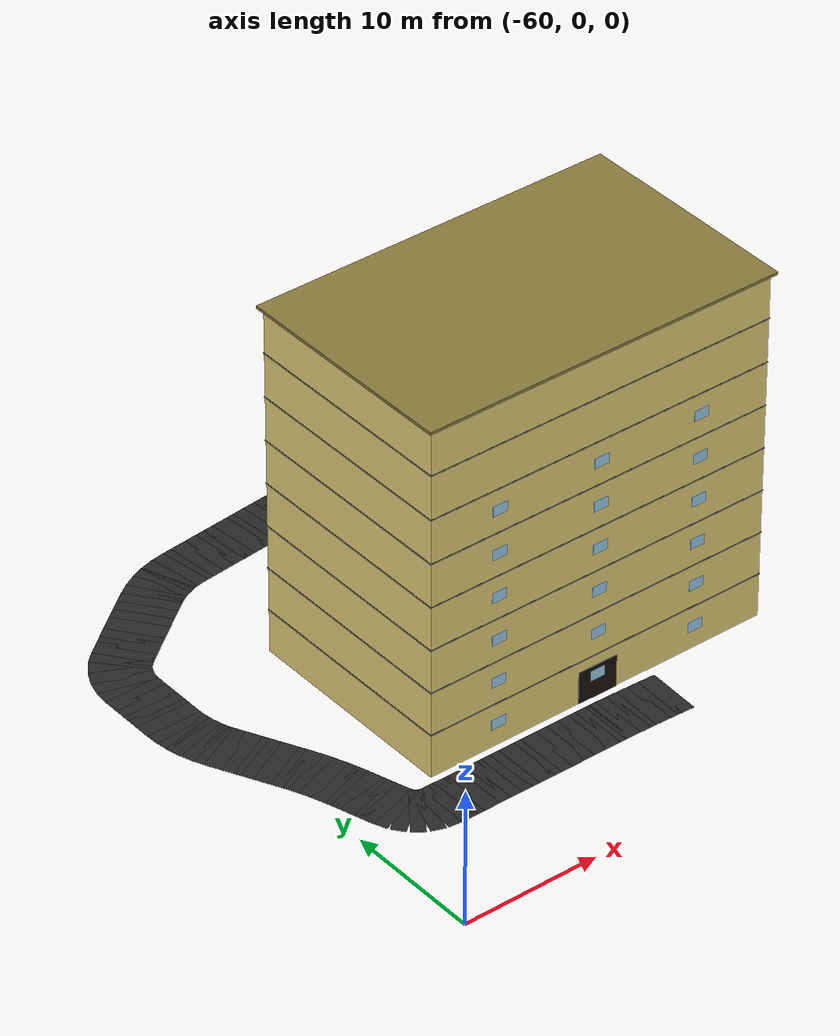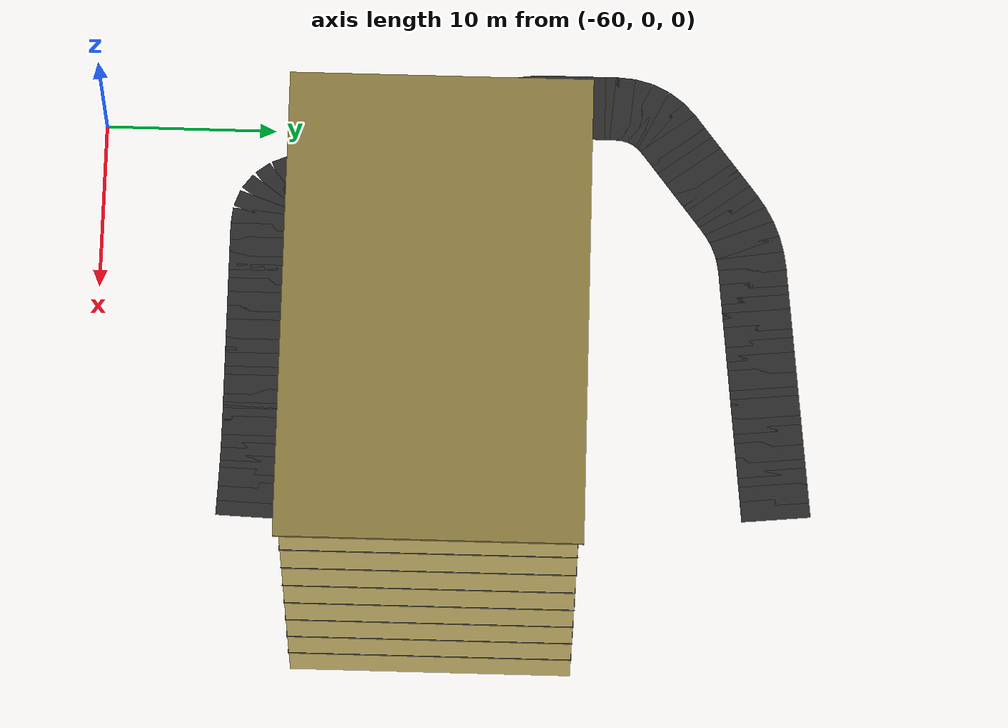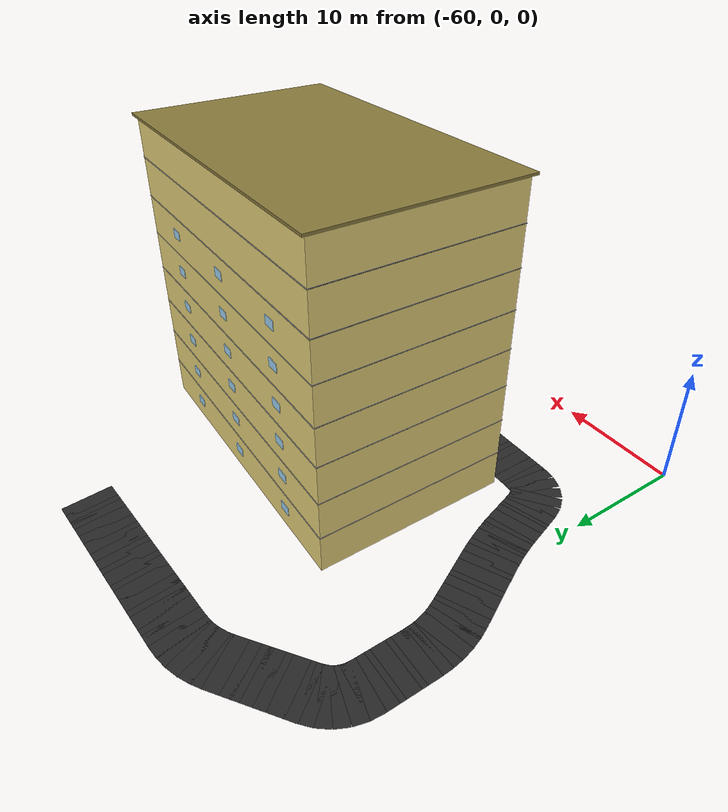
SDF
<sdf version="1.7">
 <world name="campus_delivery">
  <model name="campus_roads">
   <static>true</static>
   <link name="north_campus_loop_0223">
    <pose>-37.325 39.667 0.002 0 0 -3.041924</pose>
    <visual name="visual">
     <geometry><box><size>1.244 4.000 0.004</size></box></geometry>
     <material><ambient>0.160 0.160 0.160 1.000</ambient><diffuse>0.160 0.160 0.160 1.000</diffuse></material>
    </visual>
   </link>
   <link name="north_campus_loop_0224">
    <pose>-38.215 39.578 0.002 0 0 -3.041924</pose>
    <visual name="visual">
     <geometry><box><size>1.244 4.000 0.004</size></box></geometry>
     <material><ambient>0.160 0.160 0.160 1.000</ambient><diffuse>0.160 0.160 0.160 1.000</diffuse></material>
    </visual>
   </link>
   <link name="north_campus_loop_0225">
    <pose>-39.105 39.489 0.002 0 0 -3.041924</pose>
    <visual name="visual">
     <geometry><box><size>1.244 4.000 0.004</size></box></geometry>
     <material><ambient>0.160 0.160 0.160 1.000</ambient><diffuse>0.160 0.160 0.160 1.000</diffuse></material>
    </visual>
   </link>
   <link name="north_campus_loop_0226">
    <pose>-39.995 39.400 0.002 0 0 -3.041924</pose>
    <visual name="visual">
     <geometry><box><size>1.244 4.000 0.004</size></box></geometry>
     <material><ambient>0.160 0.160 0.160 1.000</ambient><diffuse>0.160 0.160 0.160 1.000</diffuse></material>
    </visual>
   </link>
   <link name="north_campus_loop_0227">
    <pose>-40.885 39.311 0.002 0 0 -3.041924</pose>
    <visual name="visual">
     <geometry><box><size>1.244 4.000 0.004</size></box></geometry>
     <material><ambient>0.160 0.160 0.160 1.000</ambient><diffuse>0.160 0.160 0.160 1.000</diffuse></material>
    </visual>
   </link>
   <link name="north_campus_loop_0228">
    <pose>-41.775 39.222 0.002 0 0 -3.041924</pose>
    <visual name="visual">
     <geometry><box><size>1.244 4.000 0.004</size></box></geometry>
     <material><ambient>0.160 0.160 0.160 1.000</ambient><diffuse>0.160 0.160 0.160 1.000</diffuse></material>
    </visual>
   </link>
   <link name="north_campus_loop_0229">
    <pose>-42.665 39.133 0.002 0 0 -3.041924</pose>
    <visual name="visual">
     <geometry><box><size>1.244 4.000 0.004</size></box></geometry>
     <material><ambient>0.160 0.160 0.160 1.000</ambient><diffuse>0.160 0.160 0.160 1.000</diffuse></material>
    </visual>
   </link>
   <link name="north_campus_loop_0230">
    <pose>-43.555 39.044 0.002 0 0 -3.041924</pose>
    <visual name="visual">
     <geometry><box><size>1.244 4.000 0.004</size></box></geometry>
     <material><ambient>0.160 0.160 0.160 1.000</ambient><diffuse>0.160 0.160 0.160 1.000</diffuse></material>
    </visual>
   </link>
   <link name="north_campus_loop_0231">
    <pose>-44.445 38.956 0.002 0 0 -3.041924</pose>
    <visual name="visual">
     <geometry><box><size>1.244 4.000 0.004</size></box></geometry>
     <material><ambient>0.160 0.160 0.160 1.000</ambient><diffuse>0.160 0.160 0.160 1.000</diffuse></material>
    </visual>
   </link>
   <link name="north_campus_loop_0232">
    <pose>-45.335 38.867 0.002 0 0 -3.041924</pose>
    <visual name="visual">
     <geometry><box><size>1.244 4.000 0.004</size></box></geometry>
     <material><ambient>0.160 0.160 0.160 1.000</ambient><diffuse>0.160 0.160 0.160 1.000</diffuse></material>
    </visual>
   </link>
   <link name="north_campus_loop_0233">
    <pose>-46.225 38.778 0.002 0 0 -3.041924</pose>
    <visual name="visual">
     <geometry><box><size>1.244 4.000 0.004</size></box></geometry>
     <material><ambient>0.160 0.160 0.160 1.000</ambient><diffuse>0.160 0.160 0.160 1.000</diffuse></material>
    </visual>
   </link>
   <link name="north_campus_loop_0234">
    <pose>-47.115 38.689 0.002 0 0 -3.041924</pose>
    <visual name="visual">
     <geometry><box><size>1.244 4.000 0.004</size></box></geometry>
     <material><ambient>0.160 0.160 0.160 1.000</ambient><diffuse>0.160 0.160 0.160 1.000</diffuse></material>
    </visual>
   </link>
   <link name="north_campus_loop_0235">
    <pose>-48.005 38.600 0.002 0 0 -3.041924</pose>
    <visual name="visual">
     <geometry><box><size>1.244 4.000 0.004</size></box></geometry>
     <material><ambient>0.160 0.160 0.160 1.000</ambient><diffuse>0.160 0.160 0.160 1.000</diffuse></material>
    </visual>
   </link>
   <link name="north_campus_loop_0236">
    <pose>-48.895 38.511 0.002 0 0 -3.041924</pose>
    <visual name="visual">
     <geometry><box><size>1.244 4.000 0.004</size></box></geometry>
     <material><ambient>0.160 0.160 0.160 1.000</ambient><diffuse>0.160 0.160 0.160 1.000</diffuse></material>
    </visual>
   </link>
   <link name="north_campus_loop_0237">
    <pose>-49.785 38.422 0.002 0 0 -3.041924</pose>
    <visual name="visual">
     <geometry><box><size>1.244 4.000 0.004</size></box></geometry>
     <material><ambient>0.160 0.160 0.160 1.000</ambient><diffuse>0.160 0.160 0.160 1.000</diffuse></material>
    </visual>
   </link>
   <link name="north_campus_loop_0238">
    <pose>-50.675 38.333 0.002 0 0 -3.041924</pose>
    <visual name="visual">
     <geometry><box><size>1.244 4.000 0.004</size></box></geometry>
     <material><ambient>0.160 0.160 0.160 1.000</ambient><diffuse>0.160 0.160 0.160 1.000</diffuse></material>
    </visual>
   </link>
   <link name="north_campus_loop_0239">
    <pose>-51.565 38.244 0.002 0 0 -3.041924</pose>
    <visual name="visual">
     <geometry><box><size>1.244 4.000 0.004</size></box></geometry>
     <material><ambient>0.160 0.160 0.160 1.000</ambient><diffuse>0.160 0.160 0.160 1.000</diffuse></material>
    </visual>
   </link>
   <link name="north_campus_loop_0240">
    <pose>-52.400 38.139 0.002 0 0 -2.989473</pose>
    <visual name="visual">
     <geometry><box><size>1.140 4.000 0.004</size></box></geometry>
     <material><ambient>0.160 0.160 0.160 1.000</ambient><diffuse>0.160 0.160 0.160 1.000</diffuse></material>
    </visual>
   </link>
   <link name="north_campus_loop_0241">
    <pose>-53.165 37.980 0.002 0 0 -2.881078</pose>
    <visual name="visual">
     <geometry><box><size>1.125 4.000 0.004</size></box></geometry>
     <material><ambient>0.160 0.160 0.160 1.000</ambient><diffuse>0.160 0.160 0.160 1.000</diffuse></material>
    </visual>
   </link>
   <link name="north_campus_loop_0242">
    <pose>-53.899 37.740 0.002 0 0 -2.770008</pose>
    <visual name="visual">
     <geometry><box><size>1.121 4.000 0.004</size></box></geometry>
     <material><ambient>0.160 0.160 0.160 1.000</ambient><diffuse>0.160 0.160 0.160 1.000</diffuse></material>
    </visual>
   </link>
   <link name="north_campus_loop_0243">
    <pose>-54.601 37.420 0.002 0 0 -2.658938</pose>
    <visual name="visual">
     <geometry><box><size>1.125 4.000 0.004</size></box></geometry>
     <material><ambient>0.160 0.160 0.160 1.000</ambient><diffuse>0.160 0.160 0.160 1.000</diffuse></material>
    </visual>
   </link>
   <link name="north_campus_loop_0244">
    <pose>-55.272 37.020 0.002 0 0 -2.550543</pose>
    <visual name="visual">
     <geometry><box><size>1.140 4.000 0.004</size></box></geometry>
     <material><ambient>0.160 0.160 0.160 1.000</ambient><diffuse>0.160 0.160 0.160 1.000</diffuse></material>
    </visual>
   </link>
   <link name="north_campus_loop_0245">
    <pose>-55.943 36.543 0.002 0 0 -2.498092</pose>
    <visual name="visual">
     <geometry><box><size>1.207 4.000 0.004</size></box></geometry>
     <material><ambient>0.160 0.160 0.160 1.000</ambient><diffuse>0.160 0.160 0.160 1.000</diffuse></material>
    </visual>
   </link>
   <link name="north_campus_loop_0246">
    <pose>-56.629 36.029 0.002 0 0 -2.498092</pose>
    <visual name="visual">
     <geometry><box><size>1.207 4.000 0.004</size></box></geometry>
     <material><ambient>0.160 0.160 0.160 1.000</ambient><diffuse>0.160 0.160 0.160 1.000</diffuse></material>
    </visual>
   </link>
   <link name="north_campus_loop_0247">
    <pose>-57.314 35.514 0.002 0 0 -2.498092</pose>
    <visual name="visual">
     <geometry><box><size>1.207 4.000 0.004</size></box></geometry>
     <material><ambient>0.160 0.160 0.160 1.000</ambient><diffuse>0.160 0.160 0.160 1.000</diffuse></material>
    </visual>
   </link>
   <link name="north_campus_loop_0248">
    <pose>-58.000 35.000 0.002 0 0 -2.498092</pose>
    <visual name="visual">
     <geometry><box><size>1.207 4.000 0.004</size></box></geometry>
     <material><ambient>0.160 0.160 0.160 1.000</ambient><diffuse>0.160 0.160 0.160 1.000</diffuse></material>
    </visual>
   </link>
   <link name="north_campus_loop_0249">
    <pose>-58.686 34.486 0.002 0 0 -2.498092</pose>
    <visual name="visual">
     <geometry><box><size>1.207 4.000 0.004</size></box></geometry>
     <material><ambient>0.160 0.160 0.160 1.000</ambient><diffuse>0.160 0.160 0.160 1.000</diffuse></material>
    </visual>
   </link>
   <link name="north_campus_loop_0250">
    <pose>-59.371 33.971 0.002 0 0 -2.498092</pose>
    <visual name="visual">
     <geometry><box><size>1.207 4.000 0.004</size></box></geometry>
     <material><ambient>0.160 0.160 0.160 1.000</ambient><diffuse>0.160 0.160 0.160 1.000</diffuse></material>
    </visual>
   </link>
   <link name="north_campus_loop_0251">
    <pose>-60.057 33.457 0.002 0 0 -2.498092</pose>
    <visual name="visual">
     <geometry><box><size>1.207 4.000 0.004</size></box></geometry>
     <material><ambient>0.160 0.160 0.160 1.000</ambient><diffuse>0.160 0.160 0.160 1.000</diffuse></material>
    </visual>
   </link>
   <link name="north_campus_loop_0252">
    <pose>-60.688 32.944 0.002 0 0 -2.414950</pose>
    <visual name="visual">
     <geometry><box><size>1.121 4.000 0.004</size></box></geometry>
     <material><ambient>0.160 0.160 0.160 1.000</ambient><diffuse>0.160 0.160 0.160 1.000</diffuse></material>
    </visual>
   </link>
   <link name="north_campus_loop_0253">
    <pose>-61.200 32.400 0.002 0 0 -2.231839</pose>
    <visual name="visual">
     <geometry><box><size>1.080 4.000 0.004</size></box></geometry>
     <material><ambient>0.160 0.160 0.160 1.000</ambient><diffuse>0.160 0.160 0.160 1.000</diffuse></material>
    </visual>
   </link>
   <link name="north_campus_loop_0254">
    <pose>-61.584 31.792 0.002 0 0 -2.034444</pose>
    <visual name="visual">
     <geometry><box><size>1.066 4.000 0.004</size></box></geometry>
     <material><ambient>0.160 0.160 0.160 1.000</ambient><diffuse>0.160 0.160 0.160 1.000</diffuse></material>
    </visual>
   </link>
   <link name="north_campus_loop_0255">
    <pose>-61.840 31.120 0.002 0 0 -1.837048</pose>
    <visual name="visual">
     <geometry><box><size>1.080 4.000 0.004</size></box></geometry>
     <material><ambient>0.160 0.160 0.160 1.000</ambient><diffuse>0.160 0.160 0.160 1.000</diffuse></material>
    </visual>
   </link>
   <link name="north_campus_loop_0256">
    <pose>-61.968 30.384 0.002 0 0 -1.653938</pose>
    <visual name="visual">
     <geometry><box><size>1.121 4.000 0.004</size></box></geometry>
     <material><ambient>0.160 0.160 0.160 1.000</ambient><diffuse>0.160 0.160 0.160 1.000</diffuse></material>
    </visual>
   </link>
   <link name="north_campus_loop_0257">
    <pose>-62.000 29.600 0.002 0 0 -1.570796</pose>
    <visual name="visual">
     <geometry><box><size>1.150 4.000 0.004</size></box></geometry>
     <material><ambient>0.160 0.160 0.160 1.000</ambient><diffuse>0.160 0.160 0.160 1.000</diffuse></material>
    </visual>
   </link>
   <link name="north_campus_loop_0258">
    <pose>-62.000 28.800 0.002 0 0 -1.570796</pose>
    <visual name="visual">
     <geometry><box><size>1.150 4.000 0.004</size></box></geometry>
     <material><ambient>0.160 0.160 0.160 1.000</ambient><diffuse>0.160 0.160 0.160 1.000</diffuse></material>
    </visual>
   </link>
   <link name="north_campus_loop_0259">
    <pose>-62.000 28.000 0.002 0 0 -1.570796</pose>
    <visual name="visual">
     <geometry><box><size>1.150 4.000 0.004</size></box></geometry>
     <material><ambient>0.160 0.160 0.160 1.000</ambient><diffuse>0.160 0.160 0.160 1.000</diffuse></material>
    </visual>
   </link>
   <link name="north_campus_loop_0260">
    <pose>-62.000 27.200 0.002 0 0 -1.570796</pose>
    <visual name="visual">
     <geometry><box><size>1.150 4.000 0.004</size></box></geometry>
     <material><ambient>0.160 0.160 0.160 1.000</ambient><diffuse>0.160 0.160 0.160 1.000</diffuse></material>
    </visual>
   </link>
   <link name="north_campus_loop_0261">
    <pose>-62.000 26.400 0.002 0 0 -1.570796</pose>
    <visual name="visual">
     <geometry><box><size>1.150 4.000 0.004</size></box></geometry>
     <material><ambient>0.160 0.160 0.160 1.000</ambient><diffuse>0.160 0.160 0.160 1.000</diffuse></material>
    </visual>
   </link>
   <link name="north_campus_loop_0262">
    <pose>-61.982 25.604 0.002 0 0 -1.525629</pose>
    <visual name="visual">
     <geometry><box><size>1.142 4.000 0.004</size></box></geometry>
     <material><ambient>0.160 0.160 0.160 1.000</ambient><diffuse>0.160 0.160 0.160 1.000</diffuse></material>
    </visual>
   </link>
   <link name="north_campus_loop_0263">
    <pose>-61.911 24.821 0.002 0 0 -1.433121</pose>
    <visual name="visual">
     <geometry><box><size>1.132 4.000 0.004</size></box></geometry>
     <material><ambient>0.160 0.160 0.160 1.000</ambient><diffuse>0.160 0.160 0.160 1.000</diffuse></material>
    </visual>
   </link>
   <link name="north_campus_loop_0264">
    <pose>-61.767 24.055 0.002 0 0 -1.338973</pose>
    <visual name="visual">
     <geometry><box><size>1.129 4.000 0.004</size></box></geometry>
     <material><ambient>0.160 0.160 0.160 1.000</ambient><diffuse>0.160 0.160 0.160 1.000</diffuse></material>
    </visual>
   </link>
   <link name="north_campus_loop_0265">
    <pose>-61.553 23.306 0.002 0 0 -1.244824</pose>
    <visual name="visual">
     <geometry><box><size>1.132 4.000 0.004</size></box></geometry>
     <material><ambient>0.160 0.160 0.160 1.000</ambient><diffuse>0.160 0.160 0.160 1.000</diffuse></material>
    </visual>
   </link>
   <link name="north_campus_loop_0266">
    <pose>-61.267 22.573 0.002 0 0 -1.152317</pose>
    <visual name="visual">
     <geometry><box><size>1.142 4.000 0.004</size></box></geometry>
     <material><ambient>0.160 0.160 0.160 1.000</ambient><diffuse>0.160 0.160 0.160 1.000</diffuse></material>
    </visual>
   </link>
   <link name="north_campus_loop_0267">
    <pose>-60.921 21.843 0.002 0 0 -1.107149</pose>
    <visual name="visual">
     <geometry><box><size>1.174 4.000 0.004</size></box></geometry>
     <material><ambient>0.160 0.160 0.160 1.000</ambient><diffuse>0.160 0.160 0.160 1.000</diffuse></material>
    </visual>
   </link>
   <link name="north_campus_loop_0268">
    <pose>-60.553 21.106 0.002 0 0 -1.107149</pose>
    <visual name="visual">
     <geometry><box><size>1.174 4.000 0.004</size></box></geometry>
     <material><ambient>0.160 0.160 0.160 1.000</ambient><diffuse>0.160 0.160 0.160 1.000</diffuse></material>
    </visual>
   </link>
   <link name="north_campus_loop_0269">
    <pose>-60.184 20.369 0.002 0 0 -1.107149</pose>
    <visual name="visual">
     <geometry><box><size>1.174 4.000 0.004</size></box></geometry>
     <material><ambient>0.160 0.160 0.160 1.000</ambient><diffuse>0.160 0.160 0.160 1.000</diffuse></material>
    </visual>
   </link>
   <link name="north_campus_loop_0270">
    <pose>-59.816 19.631 0.002 0 0 -1.107149</pose>
    <visual name="visual">
     <geometry><box><size>1.174 4.000 0.004</size></box></geometry>
     <material><ambient>0.160 0.160 0.160 1.000</ambient><diffuse>0.160 0.160 0.160 1.000</diffuse></material>
    </visual>
   </link>
   <link name="north_campus_loop_0271">
    <pose>-59.447 18.894 0.002 0 0 -1.107149</pose>
    <visual name="visual">
     <geometry><box><size>1.174 4.000 0.004</size></box></geometry>
     <material><ambient>0.160 0.160 0.160 1.000</ambient><diffuse>0.160 0.160 0.160 1.000</diffuse></material>
    </visual>
   </link>
   <link name="north_campus_loop_0272">
    <pose>-59.079 18.157 0.002 0 0 -1.107149</pose>
    <visual name="visual">
     <geometry><box><size>1.174 4.000 0.004</size></box></geometry>
     <material><ambient>0.160 0.160 0.160 1.000</ambient><diffuse>0.160 0.160 0.160 1.000</diffuse></material>
    </visual>
   </link>
   <link name="north_campus_loop_0273">
    <pose>-58.722 17.429 0.002 0 0 -1.123610</pose>
    <visual name="visual">
     <geometry><box><size>1.149 4.000 0.004</size></box></geometry>
     <material><ambient>0.160 0.160 0.160 1.000</ambient><diffuse>0.160 0.160 0.160 1.000</diffuse></material>
    </visual>
   </link>
   <link name="north_campus_loop_0274">
    <pose>-58.388 16.703 0.002 0 0 -1.156630</pose>
    <visual name="visual">
     <geometry><box><size>1.148 4.000 0.004</size></box></geometry>
     <material><ambient>0.160 0.160 0.160 1.000</ambient><diffuse>0.160 0.160 0.160 1.000</diffuse></material>
    </visual>
   </link>
   <link name="north_campus_loop_0275">
    <pose>-58.080 15.968 0.002 0 0 -1.189723</pose>
    <visual name="visual">
     <geometry><box><size>1.147 4.000 0.004</size></box></geometry>
     <material><ambient>0.160 0.160 0.160 1.000</ambient><diffuse>0.160 0.160 0.160 1.000</diffuse></material>
    </visual>
   </link>
   <link name="north_campus_loop_0276">
    <pose>-57.795 15.223 0.002 0 0 -1.222816</pose>
    <visual name="visual">
     <geometry><box><size>1.148 4.000 0.004</size></box></geometry>
     <material><ambient>0.160 0.160 0.160 1.000</ambient><diffuse>0.160 0.160 0.160 1.000</diffuse></material>
    </visual>
   </link>
   <link name="north_campus_loop_0277">
    <pose>-57.536 14.468 0.002 0 0 -1.255837</pose>
    <visual name="visual">
     <geometry><box><size>1.149 4.000 0.004</size></box></geometry>
     <material><ambient>0.160 0.160 0.160 1.000</ambient><diffuse>0.160 0.160 0.160 1.000</diffuse></material>
    </visual>
   </link>
   <link name="north_campus_loop_0278">
    <pose>-57.309 13.754 0.002 0 0 -1.272297</pose>
    <visual name="visual">
     <geometry><box><size>1.050 4.000 0.004</size></box></geometry>
     <material><ambient>0.160 0.160 0.160 1.000</ambient><diffuse>0.160 0.160 0.160 1.000</diffuse></material>
    </visual>
   </link>
   <link name="north_campus_loop_0279">
    <pose>-57.103 13.085 0.002 0 0 -1.272297</pose>
    <visual name="visual">
     <geometry><box><size>1.050 4.000 0.004</size></box></geometry>
     <material><ambient>0.160 0.160 0.160 1.000</ambient><diffuse>0.160 0.160 0.160 1.000</diffuse></material>
    </visual>
   </link>
   <link name="north_campus_loop_0280">
    <pose>-56.897 12.415 0.002 0 0 -1.272297</pose>
    <visual name="visual">
     <geometry><box><size>1.050 4.000 0.004</size></box></geometry>
     <material><ambient>0.160 0.160 0.160 1.000</ambient><diffuse>0.160 0.160 0.160 1.000</diffuse></material>
    </visual>
   </link>
   <link name="north_campus_loop_0281">
    <pose>-56.691 11.746 0.002 0 0 -1.272297</pose>
    <visual name="visual">
     <geometry><box><size>1.050 4.000 0.004</size></box></geometry>
     <material><ambient>0.160 0.160 0.160 1.000</ambient><diffuse>0.160 0.160 0.160 1.000</diffuse></material>
    </visual>
   </link>
   <link name="north_campus_loop_0282">
    <pose>-56.442 11.067 0.002 0 0 -1.169820</pose>
    <visual name="visual">
     <geometry><box><size>1.097 4.000 0.004</size></box></geometry>
     <material><ambient>0.160 0.160 0.160 1.000</ambient><diffuse>0.160 0.160 0.160 1.000</diffuse></material>
    </visual>
   </link>
   <link name="north_campus_loop_0283">
    <pose>-56.094 10.456 0.002 0 0 -0.923407</pose>
    <visual name="visual">
     <geometry><box><size>1.021 4.000 0.004</size></box></geometry>
     <material><ambient>0.160 0.160 0.160 1.000</ambient><diffuse>0.160 0.160 0.160 1.000</diffuse></material>
    </visual>
   </link>
   <link name="north_campus_loop_0284">
    <pose>-55.633 9.997 0.002 0 0 -0.636149</pose>
    <visual name="visual">
     <geometry><box><size>0.994 4.000 0.004</size></box></geometry>
     <material><ambient>0.160 0.160 0.160 1.000</ambient><diffuse>0.160 0.160 0.160 1.000</diffuse></material>
    </visual>
   </link>
   <link name="north_campus_loop_0285">
    <pose>-55.059 9.691 0.002 0 0 -0.348890</pose>
    <visual name="visual">
     <geometry><box><size>1.021 4.000 0.004</size></box></geometry>
     <material><ambient>0.160 0.160 0.160 1.000</ambient><diffuse>0.160 0.160 0.160 1.000</diffuse></material>
    </visual>
   </link>
   <link name="north_campus_loop_0286">
    <pose>-54.372 9.538 0.002 0 0 -0.102477</pose>
    <visual name="visual">
     <geometry><box><size>1.097 4.000 0.004</size></box></geometry>
     <material><ambient>0.160 0.160 0.160 1.000</ambient><diffuse>0.160 0.160 0.160 1.000</diffuse></material>
    </visual>
   </link>
   <link name="north_campus_loop_0287">
    <pose>-53.571 9.500 0.002 0 0 0.000000</pose>
    <visual name="visual">
     <geometry><box><size>1.207 4.000 0.004</size></box></geometry>
     <material><ambient>0.160 0.160 0.160 1.000</ambient><diffuse>0.160 0.160 0.160 1.000</diffuse></material>
    </visual>
   </link>
   <link name="north_campus_loop_0288">
    <pose>-52.714 9.500 0.002 0 0 0.000000</pose>
    <visual name="visual">
     <geometry><box><size>1.207 4.000 0.004</size></box></geometry>
     <material><ambient>0.160 0.160 0.160 1.000</ambient><diffuse>0.160 0.160 0.160 1.000</diffuse></material>
    </visual>
   </link>
   <link name="north_campus_loop_0289">
    <pose>-51.857 9.500 0.002 0 0 0.000000</pose>
    <visual name="visual">
     <geometry><box><size>1.207 4.000 0.004</size></box></geometry>
     <material><ambient>0.160 0.160 0.160 1.000</ambient><diffuse>0.160 0.160 0.160 1.000</diffuse></material>
    </visual>
   </link>
   <link name="north_campus_loop_0290">
    <pose>-51.000 9.500 0.002 0 0 0.000000</pose>
    <visual name="visual">
     <geometry><box><size>1.207 4.000 0.004</size></box></geometry>
     <material><ambient>0.160 0.160 0.160 1.000</ambient><diffuse>0.160 0.160 0.160 1.000</diffuse></material>
    </visual>
   </link>
   <link name="north_campus_loop_0291">
    <pose>-50.143 9.500 0.002 0 0 0.000000</pose>
    <visual name="visual">
     <geometry><box><size>1.207 4.000 0.004</size></box></geometry>
     <material><ambient>0.160 0.160 0.160 1.000</ambient><diffuse>0.160 0.160 0.160 1.000</diffuse></material>
    </visual>
   </link>
   <link name="north_campus_loop_0292">
    <pose>-49.286 9.500 0.002 0 0 0.000000</pose>
    <visual name="visual">
     <geometry><box><size>1.207 4.000 0.004</size></box></geometry>
     <material><ambient>0.160 0.160 0.160 1.000</ambient><diffuse>0.160 0.160 0.160 1.000</diffuse></material>
    </visual>
   </link>
   <link name="north_campus_loop_0293">
    <pose>-48.429 9.500 0.002 0 0 0.000000</pose>
    <visual name="visual">
     <geometry><box><size>1.207 4.000 0.004</size></box></geometry>
     <material><ambient>0.160 0.160 0.160 1.000</ambient><diffuse>0.160 0.160 0.160 1.000</diffuse></material>
    </visual>
   </link>
   <link name="north_campus_loop_0294">
    <pose>-47.571 9.500 0.002 0 0 0.000000</pose>
    <visual name="visual">
     <geometry><box><size>1.207 4.000 0.004</size></box></geometry>
     <material><ambient>0.160 0.160 0.160 1.000</ambient><diffuse>0.160 0.160 0.160 1.000</diffuse></material>
    </visual>
   </link>
   <link name="north_campus_loop_0295">
    <pose>-46.714 9.500 0.002 0 0 0.000000</pose>
    <visual name="visual">
     <geometry><box><size>1.207 4.000 0.004</size></box></geometry>
     <material><ambient>0.160 0.160 0.160 1.000</ambient><diffuse>0.160 0.160 0.160 1.000</diffuse></material>
    </visual>
   </link>
   <link name="north_campus_loop_0296">
    <pose>-45.857 9.500 0.002 0 0 0.000000</pose>
    <visual name="visual">
     <geometry><box><size>1.207 4.000 0.004</size></box></geometry>
     <material><ambient>0.160 0.160 0.160 1.000</ambient><diffuse>0.160 0.160 0.160 1.000</diffuse></material>
    </visual>
   </link>
   <link name="north_campus_loop_0297">
    <pose>-45.000 9.500 0.002 0 0 0.000000</pose>
    <visual name="visual">
     <geometry><box><size>1.207 4.000 0.004</size></box></geometry>
     <material><ambient>0.160 0.160 0.160 1.000</ambient><diffuse>0.160 0.160 0.160 1.000</diffuse></material>
    </visual>
   </link>
   <link name="north_campus_loop_0298">
    <pose>-44.143 9.500 0.002 0 0 0.000000</pose>
    <visual name="visual">
     <geometry><box><size>1.207 4.000 0.004</size></box></geometry>
     <material><ambient>0.160 0.160 0.160 1.000</ambient><diffuse>0.160 0.160 0.160 1.000</diffuse></material>
    </visual>
   </link>
   <link name="north_campus_loop_0299">
    <pose>-43.286 9.500 0.002 0 0 0.000000</pose>
    <visual name="visual">
     <geometry><box><size>1.207 4.000 0.004</size></box></geometry>
     <material><ambient>0.160 0.160 0.160 1.000</ambient><diffuse>0.160 0.160 0.160 1.000</diffuse></material>
    </visual>
   </link>
   <link name="north_campus_loop_0300">
    <pose>-42.429 9.500 0.002 0 0 0.000000</pose>
    <visual name="visual">
     <geometry><box><size>1.207 4.000 0.004</size></box></geometry>
     <material><ambient>0.160 0.160 0.160 1.000</ambient><diffuse>0.160 0.160 0.160 1.000</diffuse></material>
    </visual>
   </link>
   <link name="north_campus_loop_0301">
    <pose>-41.600 9.498 0.002 0 0 -0.004163</pose>
    <visual name="visual">
     <geometry><box><size>1.150 4.000 0.004</size></box></geometry>
     <material><ambient>0.160 0.160 0.160 1.000</ambient><diffuse>0.160 0.160 0.160 1.000</diffuse></material>
    </visual>
   </link>
   <link name="north_campus_loop_0302">
    <pose>-40.800 9.492 0.002 0 0 -0.012492</pose>
    <visual name="visual">
     <geometry><box><size>1.150 4.000 0.004</size></box></geometry>
     <material><ambient>0.160 0.160 0.160 1.000</ambient><diffuse>0.160 0.160 0.160 1.000</diffuse></material>
    </visual>
   </link>
   <link name="north_campus_loop_0303">
    <pose>-40.000 9.478 0.002 0 0 -0.020821</pose>
    <visual name="visual">
     <geometry><box><size>1.150 4.000 0.004</size></box></geometry>
     <material><ambient>0.160 0.160 0.160 1.000</ambient><diffuse>0.160 0.160 0.160 1.000</diffuse></material>
    </visual>
   </link>
   <link name="north_campus_loop_0304">
    <pose>-39.201 9.458 0.002 0 0 -0.029151</pose>
    <visual name="visual">
     <geometry><box><size>1.150 4.000 0.004</size></box></geometry>
     <material><ambient>0.160 0.160 0.160 1.000</ambient><diffuse>0.160 0.160 0.160 1.000</diffuse></material>
    </visual>
   </link>
   <link name="north_campus_loop_0305">
    <pose>-38.401 9.432 0.002 0 0 -0.037479</pose>
    <visual name="visual">
     <geometry><box><size>1.150 4.000 0.004</size></box></geometry>
     <material><ambient>0.160 0.160 0.160 1.000</ambient><diffuse>0.160 0.160 0.160 1.000</diffuse></material>
    </visual>
   </link>
   <link name="north_campus_loop_0306">
    <pose>-37.557 9.398 0.002 0 0 -0.041643</pose>
    <visual name="visual">
     <geometry><box><size>1.240 4.000 0.004</size></box></geometry>
     <material><ambient>0.160 0.160 0.160 1.000</ambient><diffuse>0.160 0.160 0.160 1.000</diffuse></material>
    </visual>
   </link>
   <link name="north_campus_loop_0307">
    <pose>-36.668 9.361 0.002 0 0 -0.041643</pose>
    <visual name="visual">
     <geometry><box><size>1.240 4.000 0.004</size></box></geometry>
     <material><ambient>0.160 0.160 0.160 1.000</ambient><diffuse>0.160 0.160 0.160 1.000</diffuse></material>
    </visual>
   </link>
  </model>
  <model name="teaching_building">
   <static>true</static>
   <pose>-40.000 20.000 0 0 0 0</pose>
   <link name="body">
    <visual name="body">
     <pose>0 0 12.800 0 0 0</pose>
     <geometry><box><size>26.000 16.000 25.600</size></box></geometry>
     <material><ambient>0.900 0.820 0.480 1.000</ambient><diffuse>0.900 0.820 0.480 1.000</diffuse></material>
    </visual>
    <collision name="body_collision">
     <pose>0 0 12.800 0 0 0</pose>
     <geometry><box><size>26.000 16.000 25.600</size></box></geometry>
    </collision>
    <visual name="roof">
     <pose>0 0 25.700 0 0 0</pose>
     <geometry><box><size>26.600 16.600 0.200</size></box></geometry>
     <material><ambient>0.540 0.480 0.240 1.000</ambient><diffuse>0.540 0.480 0.240 1.000</diffuse></material>
    </visual>
    <visual name="floor_sep_n_1">
     <pose>0 8.018 3.200 0 0 0</pose>
     <geometry><box><size>26.100 0.035 0.060</size></box></geometry>
     <material><ambient>0.080 0.080 0.080 1.000</ambient><diffuse>0.080 0.080 0.080 1.000</diffuse></material>
    </visual>
    <visual name="floor_sep_s_1">
     <pose>0 -8.018 3.200 0 0 0</pose>
     <geometry><box><size>26.100 0.035 0.060</size></box></geometry>
     <material><ambient>0.080 0.080 0.080 1.000</ambient><diffuse>0.080 0.080 0.080 1.000</diffuse></material>
    </visual>
    <visual name="floor_sep_e_1">
     <pose>13.018 0 3.200 0 0 0</pose>
     <geometry><box><size>0.035 16.100 0.060</size></box></geometry>
     <material><ambient>0.080 0.080 0.080 1.000</ambient><diffuse>0.080 0.080 0.080 1.000</diffuse></material>
    </visual>
    <visual name="floor_sep_w_1">
     <pose>-13.018 0 3.200 0 0 0</pose>
     <geometry><box><size>0.035 16.100 0.060</size></box></geometry>
     <material><ambient>0.080 0.080 0.080 1.000</ambient><diffuse>0.080 0.080 0.080 1.000</diffuse></material>
    </visual>
    <visual name="floor_sep_n_2">
     <pose>0 8.018 6.400 0 0 0</pose>
     <geometry><box><size>26.100 0.035 0.060</size></box></geometry>
     <material><ambient>0.080 0.080 0.080 1.000</ambient><diffuse>0.080 0.080 0.080 1.000</diffuse></material>
    </visual>
    <visual name="floor_sep_s_2">
     <pose>0 -8.018 6.400 0 0 0</pose>
     <geometry><box><size>26.100 0.035 0.060</size></box></geometry>
     <material><ambient>0.080 0.080 0.080 1.000</ambient><diffuse>0.080 0.080 0.080 1.000</diffuse></material>
    </visual>
    <visual name="floor_sep_e_2">
     <pose>13.018 0 6.400 0 0 0</pose>
     <geometry><box><size>0.035 16.100 0.060</size></box></geometry>
     <material><ambient>0.080 0.080 0.080 1.000</ambient><diffuse>0.080 0.080 0.080 1.000</diffuse></material>
    </visual>
    <visual name="floor_sep_w_2">
     <pose>-13.018 0 6.400 0 0 0</pose>
     <geometry><box><size>0.035 16.100 0.060</size></box></geometry>
     <material><ambient>0.080 0.080 0.080 1.000</ambient><diffuse>0.080 0.080 0.080 1.000</diffuse></material>
    </visual>
    <visual name="floor_sep_n_3">
     <pose>0 8.018 9.600 0 0 0</pose>
     <geometry><box><size>26.100 0.035 0.060</size></box></geometry>
     <material><ambient>0.080 0.080 0.080 1.000</ambient><diffuse>0.080 0.080 0.080 1.000</diffuse></material>
    </visual>
    <visual name="floor_sep_s_3">
     <pose>0 -8.018 9.600 0 0 0</pose>
     <geometry><box><size>26.100 0.035 0.060</size></box></geometry>
     <material><ambient>0.080 0.080 0.080 1.000</ambient><diffuse>0.080 0.080 0.080 1.000</diffuse></material>
    </visual>
    <visual name="floor_sep_e_3">
     <pose>13.018 0 9.600 0 0 0</pose>
     <geometry><box><size>0.035 16.100 0.060</size></box></geometry>
     <material><ambient>0.080 0.080 0.080 1.000</ambient><diffuse>0.080 0.080 0.080 1.000</diffuse></material>
    </visual>
    <visual name="floor_sep_w_3">
     <pose>-13.018 0 9.600 0 0 0</pose>
     <geometry><box><size>0.035 16.100 0.060</size></box></geometry>
     <material><ambient>0.080 0.080 0.080 1.000</ambient><diffuse>0.080 0.080 0.080 1.000</diffuse></material>
    </visual>
    <visual name="floor_sep_n_4">
     <pose>0 8.018 12.800 0 0 0</pose>
     <geometry><box><size>26.100 0.035 0.060</size></box></geometry>
     <material><ambient>0.080 0.080 0.080 1.000</ambient><diffuse>0.080 0.080 0.080 1.000</diffuse></material>
    </visual>
    <visual name="floor_sep_s_4">
     <pose>0 -8.018 12.800 0 0 0</pose>
     <geometry><box><size>26.100 0.035 0.060</size></box></geometry>
     <material><ambient>0.080 0.080 0.080 1.000</ambient><diffuse>0.080 0.080 0.080 1.000</diffuse></material>
    </visual>
    <visual name="floor_sep_e_4">
     <pose>13.018 0 12.800 0 0 0</pose>
     <geometry><box><size>0.035 16.100 0.060</size></box></geometry>
     <material><ambient>0.080 0.080 0.080 1.000</ambient><diffuse>0.080 0.080 0.080 1.000</diffuse></material>
    </visual>
    <visual name="floor_sep_w_4">
     <pose>-13.018 0 12.800 0 0 0</pose>
     <geometry><box><size>0.035 16.100 0.060</size></box></geometry>
     <material><ambient>0.080 0.080 0.080 1.000</ambient><diffuse>0.080 0.080 0.080 1.000</diffuse></material>
    </visual>
    <visual name="floor_sep_n_5">
     <pose>0 8.018 16.000 0 0 0</pose>
     <geometry><box><size>26.100 0.035 0.060</size></box></geometry>
     <material><ambient>0.080 0.080 0.080 1.000</ambient><diffuse>0.080 0.080 0.080 1.000</diffuse></material>
    </visual>
    <visual name="floor_sep_s_5">
     <pose>0 -8.018 16.000 0 0 0</pose>
     <geometry><box><size>26.100 0.035 0.060</size></box></geometry>
     <material><ambient>0.080 0.080 0.080 1.000</ambient><diffuse>0.080 0.080 0.080 1.000</diffuse></material>
    </visual>
    <visual name="floor_sep_e_5">
     <pose>13.018 0 16.000 0 0 0</pose>
     <geometry><box><size>0.035 16.100 0.060</size></box></geometry>
     <material><ambient>0.080 0.080 0.080 1.000</ambient><diffuse>0.080 0.080 0.080 1.000</diffuse></material>
    </visual>
    <visual name="floor_sep_w_5">
     <pose>-13.018 0 16.000 0 0 0</pose>
     <geometry><box><size>0.035 16.100 0.060</size></box></geometry>
     <material><ambient>0.080 0.080 0.080 1.000</ambient><diffuse>0.080 0.080 0.080 1.000</diffuse></material>
    </visual>
    <visual name="floor_sep_n_6">
     <pose>0 8.018 19.200 0 0 0</pose>
     <geometry><box><size>26.100 0.035 0.060</size></box></geometry>
     <material><ambient>0.080 0.080 0.080 1.000</ambient><diffuse>0.080 0.080 0.080 1.000</diffuse></material>
    </visual>
    <visual name="floor_sep_s_6">
     <pose>0 -8.018 19.200 0 0 0</pose>
     <geometry><box><size>26.100 0.035 0.060</size></box></geometry>
     <material><ambient>0.080 0.080 0.080 1.000</ambient><diffuse>0.080 0.080 0.080 1.000</diffuse></material>
    </visual>
    <visual name="floor_sep_e_6">
     <pose>13.018 0 19.200 0 0 0</pose>
     <geometry><box><size>0.035 16.100 0.060</size></box></geometry>
     <material><ambient>0.080 0.080 0.080 1.000</ambient><diffuse>0.080 0.080 0.080 1.000</diffuse></material>
    </visual>
    <visual name="floor_sep_w_6">
     <pose>-13.018 0 19.200 0 0 0</pose>
     <geometry><box><size>0.035 16.100 0.060</size></box></geometry>
     <material><ambient>0.080 0.080 0.080 1.000</ambient><diffuse>0.080 0.080 0.080 1.000</diffuse></material>
    </visual>
    <visual name="floor_sep_n_7">
     <pose>0 8.018 22.400 0 0 0</pose>
     <geometry><box><size>26.100 0.035 0.060</size></box></geometry>
     <material><ambient>0.080 0.080 0.080 1.000</ambient><diffuse>0.080 0.080 0.080 1.000</diffuse></material>
    </visual>
    <visual name="floor_sep_s_7">
     <pose>0 -8.018 22.400 0 0 0</pose>
     <geometry><box><size>26.100 0.035 0.060</size></box></geometry>
     <material><ambient>0.080 0.080 0.080 1.000</ambient><diffuse>0.080 0.080 0.080 1.000</diffuse></material>
    </visual>
    <visual name="floor_sep_e_7">
     <pose>13.018 0 22.400 0 0 0</pose>
     <geometry><box><size>0.035 16.100 0.060</size></box></geometry>
     <material><ambient>0.080 0.080 0.080 1.000</ambient><diffuse>0.080 0.080 0.080 1.000</diffuse></material>
    </visual>
    <visual name="floor_sep_w_7">
     <pose>-13.018 0 22.400 0 0 0</pose>
     <geometry><box><size>0.035 16.100 0.060</size></box></geometry>
     <material><ambient>0.080 0.080 0.080 1.000</ambient><diffuse>0.080 0.080 0.080 1.000</diffuse></material>
    </visual>
    <visual name="front_door">
     <pose>0 -8.012 1.2 0 0 0</pose>
     <geometry><box><size>3.000 0.050 2.400</size></box></geometry>
     <material><ambient>0.080 0.060 0.040 1.000</ambient><diffuse>0.080 0.060 0.040 1.000</diffuse></material>
    </visual>
    <visual name="win_n_1_-7.8">
     <pose>-7.800 8.020 1.700 0 0 0</pose>
     <geometry><box><size>1.100 0.035 0.750</size></box></geometry>
     <material><ambient>0.620 0.820 0.950 1.000</ambient><diffuse>0.620 0.820 0.950 1.000</diffuse></material>
    </visual>
    <visual name="win_s_1_-7.8">
     <pose>-7.800 -8.020 1.700 0 0 0</pose>
     <geometry><box><size>1.100 0.035 0.750</size></box></geometry>
     <material><ambient>0.620 0.820 0.950 1.000</ambient><diffuse>0.620 0.820 0.950 1.000</diffuse></material>
    </visual>
    <visual name="win_n_1_0.0">
     <pose>0.000 8.020 1.700 0 0 0</pose>
     <geometry><box><size>1.100 0.035 0.750</size></box></geometry>
     <material><ambient>0.620 0.820 0.950 1.000</ambient><diffuse>0.620 0.820 0.950 1.000</diffuse></material>
    </visual>
    <visual name="win_s_1_0.0">
     <pose>0.000 -8.020 1.700 0 0 0</pose>
     <geometry><box><size>1.100 0.035 0.750</size></box></geometry>
     <material><ambient>0.620 0.820 0.950 1.000</ambient><diffuse>0.620 0.820 0.950 1.000</diffuse></material>
    </visual>
    <visual name="win_n_1_7.8">
     <pose>7.800 8.020 1.700 0 0 0</pose>
     <geometry><box><size>1.100 0.035 0.750</size></box></geometry>
     <material><ambient>0.620 0.820 0.950 1.000</ambient><diffuse>0.620 0.820 0.950 1.000</diffuse></material>
    </visual>
    <visual name="win_s_1_7.8">
     <pose>7.800 -8.020 1.700 0 0 0</pose>
     <geometry><box><size>1.100 0.035 0.750</size></box></geometry>
     <material><ambient>0.620 0.820 0.950 1.000</ambient><diffuse>0.620 0.820 0.950 1.000</diffuse></material>
    </visual>
    <visual name="win_n_2_-7.8">
     <pose>-7.800 8.020 4.900 0 0 0</pose>
     <geometry><box><size>1.100 0.035 0.750</size></box></geometry>
     <material><ambient>0.620 0.820 0.950 1.000</ambient><diffuse>0.620 0.820 0.950 1.000</diffuse></material>
    </visual>
    <visual name="win_s_2_-7.8">
     <pose>-7.800 -8.020 4.900 0 0 0</pose>
     <geometry><box><size>1.100 0.035 0.750</size></box></geometry>
     <material><ambient>0.620 0.820 0.950 1.000</ambient><diffuse>0.620 0.820 0.950 1.000</diffuse></material>
    </visual>
    <visual name="win_n_2_0.0">
     <pose>0.000 8.020 4.900 0 0 0</pose>
     <geometry><box><size>1.100 0.035 0.750</size></box></geometry>
     <material><ambient>0.620 0.820 0.950 1.000</ambient><diffuse>0.620 0.820 0.950 1.000</diffuse></material>
    </visual>
    <visual name="win_s_2_0.0">
     <pose>0.000 -8.020 4.900 0 0 0</pose>
     <geometry><box><size>1.100 0.035 0.750</size></box></geometry>
     <material><ambient>0.620 0.820 0.950 1.000</ambient><diffuse>0.620 0.820 0.950 1.000</diffuse></material>
    </visual>
    <visual name="win_n_2_7.8">
     <pose>7.800 8.020 4.900 0 0 0</pose>
     <geometry><box><size>1.100 0.035 0.750</size></box></geometry>
     <material><ambient>0.620 0.820 0.950 1.000</ambient><diffuse>0.620 0.820 0.950 1.000</diffuse></material>
    </visual>
    <visual name="win_s_2_7.8">
     <pose>7.800 -8.020 4.900 0 0 0</pose>
     <geometry><box><size>1.100 0.035 0.750</size></box></geometry>
     <material><ambient>0.620 0.820 0.950 1.000</ambient><diffuse>0.620 0.820 0.950 1.000</diffuse></material>
    </visual>
    <visual name="win_n_3_-7.8">
     <pose>-7.800 8.020 8.100 0 0 0</pose>
     <geometry><box><size>1.100 0.035 0.750</size></box></geometry>
     <material><ambient>0.620 0.820 0.950 1.000</ambient><diffuse>0.620 0.820 0.950 1.000</diffuse></material>
    </visual>
    <visual name="win_s_3_-7.8">
     <pose>-7.800 -8.020 8.100 0 0 0</pose>
     <geometry><box><size>1.100 0.035 0.750</size></box></geometry>
     <material><ambient>0.620 0.820 0.950 1.000</ambient><diffuse>0.620 0.820 0.950 1.000</diffuse></material>
    </visual>
    <visual name="win_n_3_0.0">
     <pose>0.000 8.020 8.100 0 0 0</pose>
     <geometry><box><size>1.100 0.035 0.750</size></box></geometry>
     <material><ambient>0.620 0.820 0.950 1.000</ambient><diffuse>0.620 0.820 0.950 1.000</diffuse></material>
    </visual>
    <visual name="win_s_3_0.0">
     <pose>0.000 -8.020 8.100 0 0 0</pose>
     <geometry><box><size>1.100 0.035 0.750</size></box></geometry>
     <material><ambient>0.620 0.820 0.950 1.000</ambient><diffuse>0.620 0.820 0.950 1.000</diffuse></material>
    </visual>
    <visual name="win_n_3_7.8">
     <pose>7.800 8.020 8.100 0 0 0</pose>
     <geometry><box><size>1.100 0.035 0.750</size></box></geometry>
     <material><ambient>0.620 0.820 0.950 1.000</ambient><diffuse>0.620 0.820 0.950 1.000</diffuse></material>
    </visual>
    <visual name="win_s_3_7.8">
     <pose>7.800 -8.020 8.100 0 0 0</pose>
     <geometry><box><size>1.100 0.035 0.750</size></box></geometry>
     <material><ambient>0.620 0.820 0.950 1.000</ambient><diffuse>0.620 0.820 0.950 1.000</diffuse></material>
    </visual>
    <visual name="win_n_4_-7.8">
     <pose>-7.800 8.020 11.300 0 0 0</pose>
     <geometry><box><size>1.100 0.035 0.750</size></box></geometry>
     <material><ambient>0.620 0.820 0.950 1.000</ambient><diffuse>0.620 0.820 0.950 1.000</diffuse></material>
    </visual>
    <visual name="win_s_4_-7.8">
     <pose>-7.800 -8.020 11.300 0 0 0</pose>
     <geometry><box><size>1.100 0.035 0.750</size></box></geometry>
     <material><ambient>0.620 0.820 0.950 1.000</ambient><diffuse>0.620 0.820 0.950 1.000</diffuse></material>
    </visual>
    <visual name="win_n_4_0.0">
     <pose>0.000 8.020 11.300 0 0 0</pose>
     <geometry><box><size>1.100 0.035 0.750</size></box></geometry>
     <material><ambient>0.620 0.820 0.950 1.000</ambient><diffuse>0.620 0.820 0.950 1.000</diffuse></material>
    </visual>
    <visual name="win_s_4_0.0">
     <pose>0.000 -8.020 11.300 0 0 0</pose>
     <geometry><box><size>1.100 0.035 0.750</size></box></geometry>
     <material><ambient>0.620 0.820 0.950 1.000</ambient><diffuse>0.620 0.820 0.950 1.000</diffuse></material>
    </visual>
    <visual name="win_n_4_7.8">
     <pose>7.800 8.020 11.300 0 0 0</pose>
     <geometry><box><size>1.100 0.035 0.750</size></box></geometry>
     <material><ambient>0.620 0.820 0.950 1.000</ambient><diffuse>0.620 0.820 0.950 1.000</diffuse></material>
    </visual>
    <visual name="win_s_4_7.8">
     <pose>7.800 -8.020 11.300 0 0 0</pose>
     <geometry><box><size>1.100 0.035 0.750</size></box></geometry>
     <material><ambient>0.620 0.820 0.950 1.000</ambient><diffuse>0.620 0.820 0.950 1.000</diffuse></material>
    </visual>
    <visual name="win_n_5_-7.8">
     <pose>-7.800 8.020 14.500 0 0 0</pose>
     <geometry><box><size>1.100 0.035 0.750</size></box></geometry>
     <material><ambient>0.620 0.820 0.950 1.000</ambient><diffuse>0.620 0.820 0.950 1.000</diffuse></material>
    </visual>
    <visual name="win_s_5_-7.8">
     <pose>-7.800 -8.020 14.500 0 0 0</pose>
     <geometry><box><size>1.100 0.035 0.750</size></box></geometry>
     <material><ambient>0.620 0.820 0.950 1.000</ambient><diffuse>0.620 0.820 0.950 1.000</diffuse></material>
    </visual>
    <visual name="win_n_5_0.0">
     <pose>0.000 8.020 14.500 0 0 0</pose>
     <geometry><box><size>1.100 0.035 0.750</size></box></geometry>
     <material><ambient>0.620 0.820 0.950 1.000</ambient><diffuse>0.620 0.820 0.950 1.000</diffuse></material>
    </visual>
    <visual name="win_s_5_0.0">
     <pose>0.000 -8.020 14.500 0 0 0</pose>
     <geometry><box><size>1.100 0.035 0.750</size></box></geometry>
     <material><ambient>0.620 0.820 0.950 1.000</ambient><diffuse>0.620 0.820 0.950 1.000</diffuse></material>
    </visual>
    <visual name="win_n_5_7.8">
     <pose>7.800 8.020 14.500 0 0 0</pose>
     <geometry><box><size>1.100 0.035 0.750</size></box></geometry>
     <material><ambient>0.620 0.820 0.950 1.000</ambient><diffuse>0.620 0.820 0.950 1.000</diffuse></material>
    </visual>
    <visual name="win_s_5_7.8">
     <pose>7.800 -8.020 14.500 0 0 0</pose>
     <geometry><box><size>1.100 0.035 0.750</size></box></geometry>
     <material><ambient>0.620 0.820 0.950 1.000</ambient><diffuse>0.620 0.820 0.950 1.000</diffuse></material>
    </visual>
    <visual name="win_n_6_-7.8">
     <pose>-7.800 8.020 17.700 0 0 0</pose>
     <geometry><box><size>1.100 0.035 0.750</size></box></geometry>
     <material><ambient>0.620 0.820 0.950 1.000</ambient><diffuse>0.620 0.820 0.950 1.000</diffuse></material>
    </visual>
    <visual name="win_s_6_-7.8">
     <pose>-7.800 -8.020 17.700 0 0 0</pose>
     <geometry><box><size>1.100 0.035 0.750</size></box></geometry>
     <material><ambient>0.620 0.820 0.950 1.000</ambient><diffuse>0.620 0.820 0.950 1.000</diffuse></material>
    </visual>
    <visual name="win_n_6_0.0">
     <pose>0.000 8.020 17.700 0 0 0</pose>
     <geometry><box><size>1.100 0.035 0.750</size></box></geometry>
     <material><ambient>0.620 0.820 0.950 1.000</ambient><diffuse>0.620 0.820 0.950 1.000</diffuse></material>
    </visual>
    <visual name="win_s_6_0.0">
     <pose>0.000 -8.020 17.700 0 0 0</pose>
     <geometry><box><size>1.100 0.035 0.750</size></box></geometry>
     <material><ambient>0.620 0.820 0.950 1.000</ambient><diffuse>0.620 0.820 0.950 1.000</diffuse></material>
    </visual>
    <visual name="win_n_6_7.8">
     <pose>7.800 8.020 17.700 0 0 0</pose>
     <geometry><box><size>1.100 0.035 0.750</size></box></geometry>
     <material><ambient>0.620 0.820 0.950 1.000</ambient><diffuse>0.620 0.820 0.950 1.000</diffuse></material>
    </visual>
    <visual name="win_s_6_7.8">
     <pose>7.800 -8.020 17.700 0 0 0</pose>
     <geometry><box><size>1.100 0.035 0.750</size></box></geometry>
     <material><ambient>0.620 0.820 0.950 1.000</ambient><diffuse>0.620 0.820 0.950 1.000</diffuse></material>
    </visual>
   </link>
  </model>
 </world>
</sdf>
